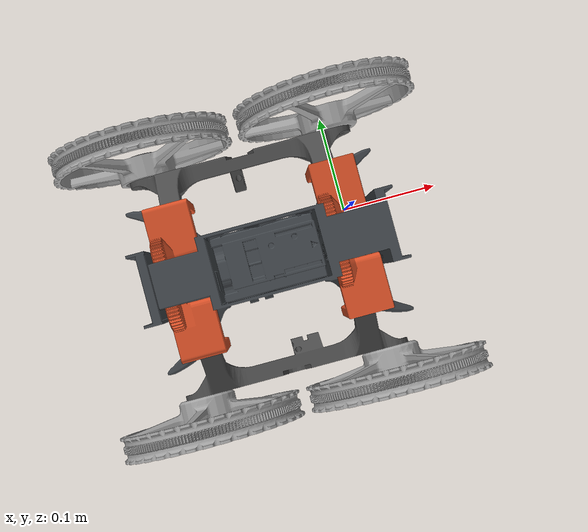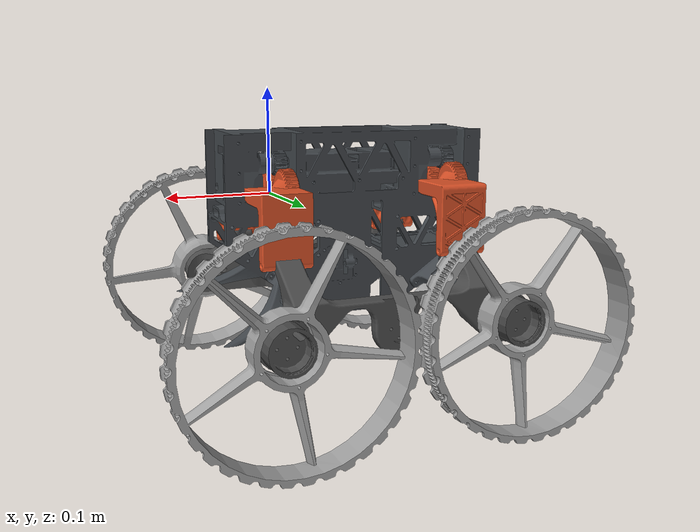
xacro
<?xml version="1.0" encoding="utf-8"?>
<robot
  name="drobotv0"
  xmlns:xacro="http://www.ros.org/wiki/xacro">
  <link
    name="base_link">
    <inertial>
      <origin
        xyz="-0.0889244188854842 -0.0297072849881794 -0.00929750180536801"
        rpy="0 0 0" />
      <mass
        value="0.833077329855222" />
      <inertia
        ixx="0.000773080517150311"
        ixy="4.75348987099268E-07"
        ixz="3.15411374662775E-05"
        iyy="0.00170443636203176"
        iyz="-5.22766703200179E-06"
        izz="0.00134882396575001" />
    </inertial>
    <visual>
      <origin
        xyz="0 0 0"
        rpy="0 0 0" />
      <geometry>
        <mesh
          filename="package://drobot_description/mesh_sub/base_link.STL" />
      </geometry>
      <material
        name="">
        <color
          rgba="0.262745098039216 0.282352941176471 0.301960784313725 1" />
      </material>
    </visual>
    <collision>
      <origin
        xyz="0 0 0"
        rpy="0 0 0" />
      <geometry>
        <mesh
          filename="package://drobot_description/mesh_sub/base_link.STL" />
      </geometry>
    </collision>
  </link>
  <link
    name="L_shaped_LF">
    <inertial>
      <origin
        xyz="-0.0914999999999999 -0.226139844904917 -0.00606387284104033"
        rpy="0 0 0" />
      <mass
        value="0.05" />
      <inertia
        ixx="1e-5"
        ixy="0"
        ixz="0"
        iyy="1e-5"
        iyz="0"
        izz="1e-5" />
    </inertial>
    <visual>
      <origin
        xyz="0 0 0"
        rpy="0 0 0" />
      <geometry>
        <mesh
          filename="package://drobot_description/mesh_sub/L_shaped_LF.STL" />
      </geometry>
      <material
        name="">
        <color
          rgba="0.866666666666667 0.32156862745098 0.156862745098039 1" />
      </material>
    </visual>
    <collision>
      <origin
        xyz="0 0 0"
        rpy="0 0 0" />
      <geometry>
        <mesh
          filename="package://drobot_description/mesh_sub/L_shaped_LF.STL" />
      </geometry>
    </collision>
  </link>
  <joint
    name="servo_LF"
    type="revolute">
    <origin
      xyz="0 0 0"
      rpy="0 0 0" />
    <parent
      link="base_link" />
    <child
      link="L_shaped_LF" />
    <axis
      xyz="1 0 0" />
    <limit
      lower="-0.60"
      upper="0.60"
      effort="100"
      velocity="2.0" />
    <dynamics damping="40.0" friction="8.0" />
  </joint>
  <link
    name="arm_left">
    <inertial>
      <origin
        xyz="-0.0931620123430914 0.0448986931827952 -0.046046331460358"
        rpy="0 0 0" />
      <mass
        value="0.24484228934346" />
      <inertia
        ixx="0.000170537098668617"
        ixy="-1.58233646520693E-06"
        ixz="-1.7429684129348E-06"
        iyy="0.00224130018665751"
        iyz="5.42649839520087E-05"
        izz="0.00220859312793653" />
    </inertial>
    <visual>
      <origin
        xyz="0 0 0"
        rpy="0 0 0" />
      <geometry>
        <mesh
          filename="package://drobot_description/mesh_sub/arm_left.STL" />
      </geometry>
      <material
        name="">
        <color
          rgba="0.301960784313725 0.301960784313725 0.301960784313725 1" />
      </material>
    </visual>
    <collision>
      <origin
        xyz="0 0 0"
        rpy="0 0 0" />
      <geometry>
        <mesh
          filename="package://drobot_description/mesh_sub/arm_left.STL" />
      </geometry>
    </collision>
  </link>
  <joint
    name="armjoint_left"
    type="revolute">
    <origin
      xyz="0 0.05 -0.06"
      rpy="0 0 0" />
    <parent
      link="L_shaped_LF" />
    <child
      link="arm_left" />
    <axis
      xyz="1 0 0" />
    <limit
      lower="-0.40"
      upper="0.90"
      effort="120"
      velocity="2.0" />
    <dynamics damping="50.0" friction="10.0" />
  </joint>
  <link
    name="wheel_LF">
    <inertial>
      <origin
        xyz="2.60862526024752E-10 -0.000286889805765134 -3.12484399267454E-06"
        rpy="0 0 0" />
      <mass
        value="0.154468165769782" />
      <inertia
        ixx="0.000600971981829425"
        ixy="1.08364593575826E-12"
        ixz="7.04343356440919E-11"
        iyy="0.00115439211878326"
        iyz="6.13580681107254E-06"
        izz="0.000601040353425951" />
    </inertial>
    <visual>
      <origin
        xyz="0 0 0"
        rpy="0 0 0" />
      <geometry>
        <mesh
          filename="package://drobot_description/mesh_sub/wheel_LF.STL" />
      </geometry>
      <material
        name="">
        <color
          rgba="0.647058823529412 0.647058823529412 0.647058823529412 1" />
      </material>
    </visual>
    <collision>
      <origin
        xyz="0 0 0"
        rpy="0 0 0" />
      <geometry>
        <mesh
          filename="package://drobot_description/mesh_sub/wheel_LF.STL" />
      </geometry>
    </collision>
  </link>
  <joint
    name="wheeljoint_LF"
    type="continuous">
    <origin
      xyz="0.023562 0.08366 -0.059076"
      rpy="0 0 0" />
    <parent
      link="arm_left" />
    <child
      link="wheel_LF" />
    <axis
      xyz="0 0.99994 0.011086" />
    <limit
      lower="-3.14"
      upper="3.14"
      effort="1"
      velocity="1" />
  </joint>
  <link
    name="Wheel_LR">
    <inertial>
      <origin
        xyz="-5.15756337221562E-08 0.000105250285688585 1.17488931114518E-06"
        rpy="0 0 0" />
      <mass
        value="0.152312962480992" />
      <inertia
        ixx="0.000598326596096096"
        ixy="-1.78118226081761E-11"
        ixz="-1.27742129121258E-10"
        iyy="0.00115245973115687"
        iyz="6.14368741670457E-06"
        izz="0.000598394447443558" />
    </inertial>
    <visual>
      <origin
        xyz="0 0 0"
        rpy="0 0 0" />
      <geometry>
        <mesh
          filename="package://drobot_description/mesh_sub/Wheel_LR.STL" />
      </geometry>
      <material
        name="">
        <color
          rgba="0.647058823529412 0.647058823529412 0.647058823529412 1" />
      </material>
    </visual>
    <collision>
      <origin
        xyz="0 0 0"
        rpy="0 0 0" />
      <geometry>
        <mesh
          filename="package://drobot_description/mesh_sub/Wheel_LR.STL" />
      </geometry>
    </collision>
  </link>
  <joint
    name="wheeljoint_LR"
    type="continuous">
    <origin
      xyz="-0.20956 0.08166 -0.059098"
      rpy="0 0 0" />
    <parent
      link="arm_left" />
    <child
      link="Wheel_LR" />
    <axis
      xyz="0 0.99994 0.011086" />
    <limit
      lower="-3.14"
      upper="3.14"
      effort="1"
      velocity="1" />
  </joint>
  <link
    name="L_shaped_LR">
    <inertial>
      <origin
        xyz="0.0935000000000001 -0.226000000000001 -0.00999999999998616"
        rpy="0 0 0" />
      <mass
        value="0.05" />
      <inertia
        ixx="1e-5"
        ixy="0"
        ixz="0"
        iyy="1e-5"
        iyz="0"
        izz="1e-5" />
    </inertial>
    <visual>
      <origin
        xyz="0 0 0"
        rpy="0 0 0" />
      <geometry>
        <mesh
          filename="package://drobot_description/mesh_sub/L_shaped_LR.STL" />
      </geometry>
      <material
        name="">
        <color
          rgba="0.866666666666667 0.32156862745098 0.156862745098039 1" />
      </material>
    </visual>
    <collision>
      <origin
        xyz="0 0 0"
        rpy="0 0 0" />
      <geometry>
        <mesh
          filename="package://drobot_description/mesh_sub/L_shaped_LR.STL" />
      </geometry>
    </collision>
  </link>
  <joint
    name="servo_LR"
    type="revolute">
    <origin
      xyz="-0.185 0 0"
      rpy="-0.017411 0 0" />
    <parent
      link="base_link" />
    <child
      link="L_shaped_LR" />
    <axis
      xyz="-1 0 0" />
    <limit
      lower="-0.60"
      upper="0.60"
      effort="100"
      velocity="2.0" />
    <dynamics damping="40.0" friction="8.0" />
  </joint>
  <link
    name="L_shaped_RF">
    <inertial>
      <origin
        xyz="-0.0019695833812847 -0.0309831143748686 -0.0138278315830626"
        rpy="0 0 0" />
      <mass
        value="0.0905005401209127" />
      <inertia
        ixx="7.54905591561205E-05"
        ixy="6.13267441308909E-06"
        ixz="3.92994349377663E-06"
        iyy="5.55206991037999E-05"
        iyz="-2.21490616791507E-05"
        izz="5.79185192001968E-05" />
    </inertial>
    <visual>
      <origin
        xyz="0 0 0"
        rpy="0 0 0" />
      <geometry>
        <mesh
          filename="package://drobot_description/mesh_sub/L_shaped_RF.STL" />
      </geometry>
      <material
        name="">
        <color
          rgba="0.866666666666667 0.32156862745098 0.156862745098039 1" />
      </material>
    </visual>
    <collision>
      <origin
        xyz="0 0 0"
        rpy="0 0 0" />
      <geometry>
        <mesh
          filename="package://drobot_description/mesh_sub/L_shaped_RF.STL" />
      </geometry>
    </collision>
  </link>
  <joint
    name="servo_RF"
    type="revolute">
    <origin
      xyz="0 -0.058991 0.0010272"
      rpy="-0.017411 0 0" />
    <parent
      link="base_link" />
    <child
      link="L_shaped_RF" />
    <axis
      xyz="-1 0 0" />
    <limit
      lower="-0.60"
      upper="0.60"
      effort="100"
      velocity="2.0" />
    <dynamics damping="40.0" friction="8.0" />
  </joint>
  <link
    name="arm_right">
    <inertial>
      <origin
        xyz="-0.0908822478205685 -0.050184669302771 -0.0447973541801233"
        rpy="0 0 0" />
      <mass
        value="0.308279334191148" />
      <inertia
        ixx="0.000203101220752389"
        ixy="-4.87097044355127E-06"
        ixz="1.17916791952934E-05"
        iyy="0.00240539625392237"
        iyz="-5.88234514179037E-05"
        izz="0.00237296769471379" />
    </inertial>
    <visual>
      <origin
        xyz="0 0 0"
        rpy="0 0 0" />
      <geometry>
        <mesh
          filename="package://drobot_description/mesh_sub/arm_right.STL" />
      </geometry>
      <material
        name="">
        <color
          rgba="0.301960784313725 0.301960784313725 0.301960784313725 1" />
      </material>
    </visual>
    <collision>
      <origin
        xyz="0 0 0"
        rpy="0 0 0" />
      <geometry>
        <mesh
          filename="package://drobot_description/mesh_sub/arm_right.STL" />
      </geometry>
    </collision>
  </link>
  <joint
    name="armjoint_right"
    type="revolute">
    <origin
      xyz="0 -0.049908 -0.060076"
      rpy="0.0015296 0 0" />
    <parent
      link="L_shaped_RF" />
    <child
      link="arm_right" />
    <axis
      xyz="-1 0 0" />
    <limit
      lower="-0.40"
      upper="0.90"
      effort="120"
      velocity="2.0" />
    <dynamics damping="50.0" friction="10.0" />
  </joint>
  <link
    name="wheel_RF">
    <inertial>
      <origin
        xyz="-4.40591140654645E-08 0.000284922709760382 -3.3868641609841E-05"
        rpy="0 0 0" />
      <mass
        value="0.154467898219019" />
      <inertia
        ixx="0.000600971578740358"
        ixy="6.12602918489903E-11"
        ixz="1.30353191446884E-10"
        iyy="0.0011467663289071"
        iyz="-6.47976005816027E-05"
        izz="0.000608664714579085" />
    </inertial>
    <visual>
      <origin
        xyz="0 0 0"
        rpy="0 0 0" />
      <geometry>
        <mesh
          filename="package://drobot_description/mesh_sub/wheel_RF.STL" />
      </geometry>
      <material
        name="">
        <color
          rgba="0.647058823529412 0.647058823529412 0.647058823529412 1" />
      </material>
    </visual>
    <collision>
      <origin
        xyz="0 0 0"
        rpy="0 0 0" />
      <geometry>
        <mesh
          filename="package://drobot_description/mesh_sub/wheel_RF.STL" />
      </geometry>
    </collision>
  </link>
  <joint
    name="wheeljoint_RF"
    type="continuous">
    <origin
      xyz="0.023562 -0.089495 -0.049796"
      rpy="0 0 0" />
    <parent
      link="arm_right" />
    <child
      link="wheel_RF" />
    <axis
      xyz="0 0.99303 -0.11789" />
    <limit
      lower="-3.14"
      upper="3.14"
      effort="1"
      velocity="1" />
  </joint>
  <link
    name="wheel_RR">
    <inertial>
      <origin
        xyz="-6.45995504866548E-08 0.000284926543628723 -3.38366730441714E-05"
        rpy="0 0 0" />
      <mass
        value="0.154467896551541" />
      <inertia
        ixx="0.000600971815877821"
        ixy="6.64266647788824E-11"
        ixz="1.46664691471037E-10"
        iyy="0.00114676631343275"
        iyz="-6.47976414259165E-05"
        izz="0.000608664474500489" />
    </inertial>
    <visual>
      <origin
        xyz="0 0 0"
        rpy="0 0 0" />
      <geometry>
        <mesh
          filename="package://drobot_description/mesh_sub/wheel_RR.STL" />
      </geometry>
      <material
        name="">
        <color
          rgba="0.647058823529412 0.647058823529412 0.647058823529412 1" />
      </material>
    </visual>
    <collision>
      <origin
        xyz="0 0 0"
        rpy="0 0 0" />
      <geometry>
        <mesh
          filename="package://drobot_description/mesh_sub/wheel_RR.STL" />
      </geometry>
    </collision>
  </link>
  <joint
    name="wheeljoint_RR"
    type="continuous">
    <origin
      xyz="-0.20956 -0.089495 -0.049796"
      rpy="0 0 0" />
    <parent
      link="arm_right" />
    <child
      link="wheel_RR" />
    <axis
      xyz="0 0.99303 -0.11789" />
    <limit
      lower="-3.14"
      upper="3.14"
      effort="1"
      velocity="1" />
  </joint>
  <link
    name="L_shaped_RR">
    <inertial>
      <origin
        xyz="-0.00191858997035284 -0.0307223401278325 -0.0137316842235734"
        rpy="0 0 0" />
      <mass
        value="0.087853253481173" />
      <inertia
        ixx="7.23346796635378E-05"
        ixy="6.0188816086711E-06"
        ixz="3.98510495451234E-06"
        iyy="5.36793164280707E-05"
        iyz="-2.11530981944826E-05"
        izz="5.58695162641352E-05" />
    </inertial>
    <visual>
      <origin
        xyz="0 0 0"
        rpy="0 0 0" />
      <geometry>
        <mesh
          filename="package://drobot_description/mesh_sub/L_shaped_RR.STL" />
      </geometry>
      <material
        name="">
        <color
          rgba="0.866666666666667 0.32156862745098 0.156862745098039 1" />
      </material>
    </visual>
    <collision>
      <origin
        xyz="0 0 0"
        rpy="0 0 0" />
      <geometry>
        <mesh
          filename="package://drobot_description/mesh_sub/L_shaped_RR.STL" />
      </geometry>
    </collision>
  </link>
  <joint
    name="servo_RR"
    type="revolute">
    <origin
      xyz="-0.185 -0.058991 0.0010272"
      rpy="-0.017411 0 0" />
    <parent
      link="base_link" />
    <child
      link="L_shaped_RR" />
    <axis
      xyz="1 0 0" />
    <limit
      lower="-0.60"
      upper="0.60"
      effort="100"
      velocity="2.0" />
    <dynamics damping="40.0" friction="8.0" />
  </joint>

  <!-- Gazebo systems for teleop (/cmd_vel) -->
  <gazebo>
    <self_collide>false</self_collide>
  </gazebo>

  <gazebo>
    <plugin filename="gz-sim-joint-state-publisher-system"
            name="gz::sim::systems::JointStatePublisher">
      <topic>/joint_states</topic>
    </plugin>
  </gazebo>

  <gazebo>
    <plugin filename="gz-sim-diff-drive-system"
            name="gz::sim::systems::DiffDrive">
      <left_joint>wheeljoint_LF</left_joint>
      <left_joint>wheeljoint_LR</left_joint>
      <right_joint>wheeljoint_RF</right_joint>
      <right_joint>wheeljoint_RR</right_joint>
      <wheel_separation>0.35</wheel_separation>
      <wheel_radius>0.112</wheel_radius>
      <topic>/cmd_vel</topic>
    </plugin>
  </gazebo>

  <!-- Joint position controllers (Gazebo topic control) -->
  <gazebo>
    <plugin filename="gz-sim-joint-position-controller-system"
            name="gz::sim::systems::JointPositionController">
      <joint_name>servo_LF</joint_name>
      <topic>/servo_LF/cmd_pos</topic>
      <initial_position>0.0</initial_position>
      <p_gain>20.0</p_gain>
      <i_gain>0.0</i_gain>
      <d_gain>1.0</d_gain>
      <cmd_max>200.0</cmd_max>
      <cmd_min>-200.0</cmd_min>
    </plugin>
  </gazebo>
  <gazebo>
    <plugin filename="gz-sim-joint-position-controller-system"
            name="gz::sim::systems::JointPositionController">
      <joint_name>servo_LR</joint_name>
      <topic>/servo_LR/cmd_pos</topic>
      <initial_position>0.0</initial_position>
      <p_gain>20.0</p_gain>
      <i_gain>0.0</i_gain>
      <d_gain>1.0</d_gain>
      <cmd_max>200.0</cmd_max>
      <cmd_min>-200.0</cmd_min>
    </plugin>
  </gazebo>
  <gazebo>
    <plugin filename="gz-sim-joint-position-controller-system"
            name="gz::sim::systems::JointPositionController">
      <joint_name>servo_RF</joint_name>
      <topic>/servo_RF/cmd_pos</topic>
      <initial_position>0.0</initial_position>
      <p_gain>20.0</p_gain>
      <i_gain>0.0</i_gain>
      <d_gain>1.0</d_gain>
      <cmd_max>200.0</cmd_max>
      <cmd_min>-200.0</cmd_min>
    </plugin>
  </gazebo>
  <gazebo>
    <plugin filename="gz-sim-joint-position-controller-system"
            name="gz::sim::systems::JointPositionController">
      <joint_name>servo_RR</joint_name>
      <topic>/servo_RR/cmd_pos</topic>
      <initial_position>0.0</initial_position>
      <p_gain>20.0</p_gain>
      <i_gain>0.0</i_gain>
      <d_gain>1.0</d_gain>
      <cmd_max>200.0</cmd_max>
      <cmd_min>-200.0</cmd_min>
    </plugin>
  </gazebo>
  <gazebo>
    <plugin filename="gz-sim-joint-position-controller-system"
            name="gz::sim::systems::JointPositionController">
      <joint_name>armjoint_left</joint_name>
      <topic>/armjoint_left/cmd_pos</topic>
      <initial_position>0.0</initial_position>
      <p_gain>20.0</p_gain>
      <i_gain>0.0</i_gain>
      <d_gain>1.0</d_gain>
      <cmd_max>200.0</cmd_max>
      <cmd_min>-200.0</cmd_min>
    </plugin>
  </gazebo>
  <gazebo>
    <plugin filename="gz-sim-joint-position-controller-system"
            name="gz::sim::systems::JointPositionController">
      <joint_name>armjoint_right</joint_name>
      <topic>/armjoint_right/cmd_pos</topic>
      <initial_position>0.0</initial_position>
      <p_gain>20.0</p_gain>
      <i_gain>0.0</i_gain>
      <d_gain>1.0</d_gain>
      <cmd_max>200.0</cmd_max>
      <cmd_min>-200.0</cmd_min>
    </plugin>
  </gazebo>

  <gazebo>
    <plugin filename="gz-sim-odometry-publisher-system"
            name="gz::sim::systems::OdometryPublisher">
      <odom_publish_frequency>50</odom_publish_frequency>
      <odom_frame>odom</odom_frame>
      <robot_base_frame>base_link</robot_base_frame>
      <odom_topic>/odom</odom_topic>
    </plugin>
  </gazebo>
</robot>
